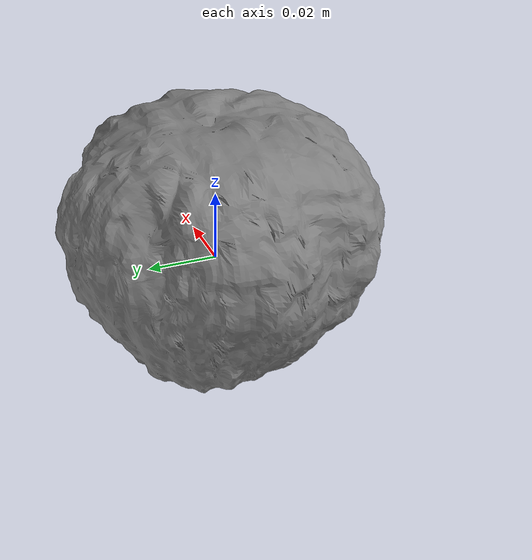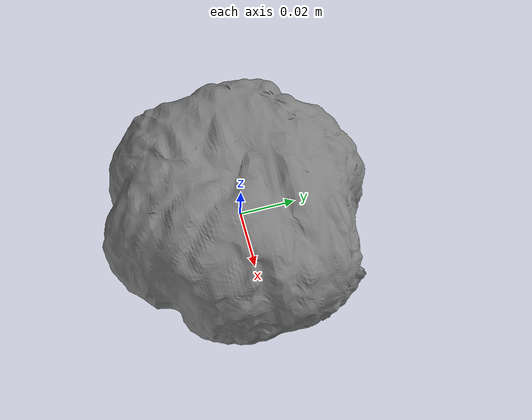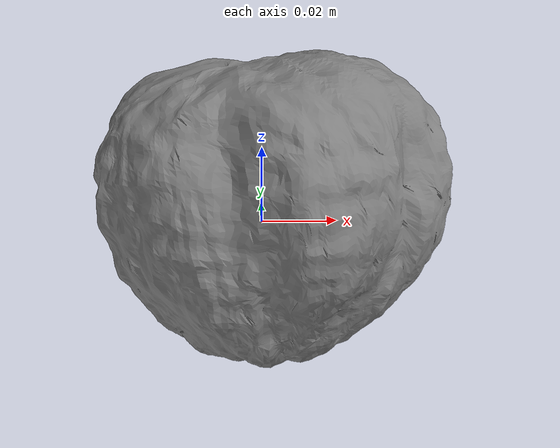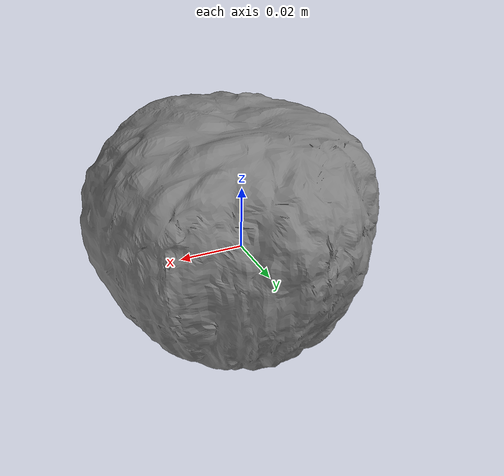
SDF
<?xml version="1.0" ?>
<sdf version="1.6">
  <model name="rock1"> <pose>0 0 0 0 0 0</pose> <link name="link">
      <inertial>
        <mass>0.001</mass>
        <inertia ixx="0.000833" ixy="0" ixz="0" iyy="0.000833" iyz="0" izz="0.000833"/>
      </inertial>

      <collision name="collision">
        <geometry>
          <mesh>
            <uri>model://rock1/meshes/rock1.stl</uri>
            <scale>0.001 0.001 0.001</scale>
          </mesh>
        </geometry>
      </collision>

      <visual name="visual">
        <geometry>
          <mesh>
            <uri>model://rock1/meshes/rock1.stl</uri>
            <scale>0.001 0.001 0.001</scale>
          </mesh>
        </geometry>
        <material>
          <ambient>0.3 0.3 0.3 1</ambient>
          <diffuse>0.5 0.5 0.5 1</diffuse>
          <specular>0.01 0.01 0.01 1</specular>
          <emissive>0 0 0 0</emissive>
        </material>
      </visual>

    </link>
  </model>
</sdf>
